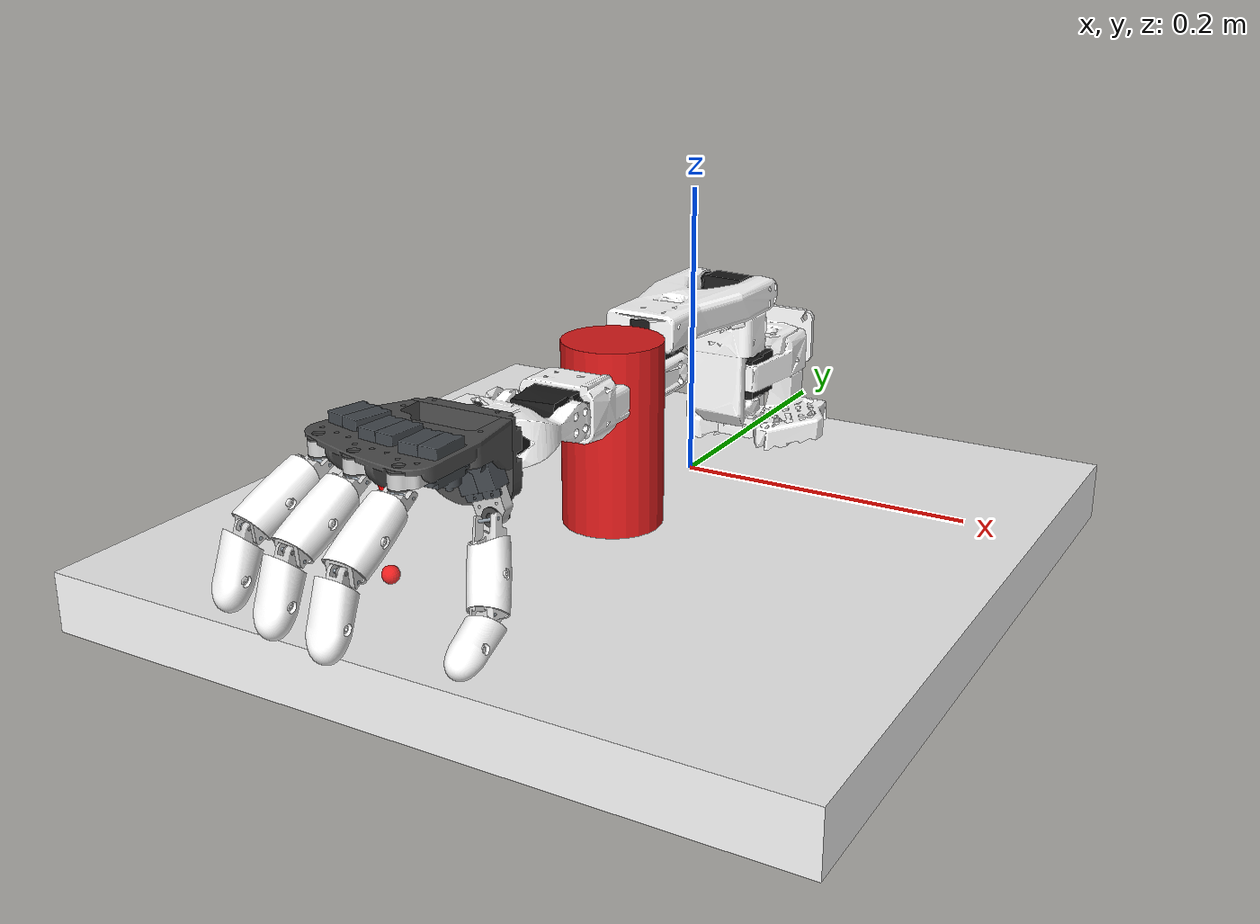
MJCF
<mujoco model="so_arm100">
  <compiler angle="radian" meshdir="../sim/"/>

  <option impratio="10" cone="elliptic"/>

  <visual>
    <global offheight="640"/>
  </visual>

  <default>
    <default class="so_arm100">
      <joint armature="0.1" frictionloss="0.1"/>
      <general forcerange="-3.5 3.5" biastype="affine" gainprm="50" biasprm="0 -50 1"/>
      <default class="Rotation">
        <joint range="-1.92 1.92" axis="0 1 0"/>
      </default>
      <default class="Pitch">
        <joint range="-3.32 0.174" axis="1 0 0"/>
      </default>
      <default class="Elbow">
        <joint range="-0.174 3.14" axis="1 0 0"/>
      </default>
      <default class="Wrist_Pitch">
        <joint range="-1.66 1.66" axis="1 0 0"/>
      </default>
      <default class="Wrist_Roll">
        <joint range="-2.79 2.79" axis="0 1 0"/>
      </default>
      <default class="Jaw">
        <joint range="-0.174 1.75"/>
      </default>
      <default class="visual">
        <geom type="mesh" contype="0" conaffinity="0" group="2" density="0" material="white"/>
        <default class="motor_visual">
          <geom material="black"/>
        </default>
      </default>
      <default class="collision">
        <geom type="mesh" group="3" material="white"/>
        <default class="finger_collision">
          <geom type="box" solref="0.01" solimp="2 1 0.01"/>
        </default>
      </default>
    </default>
    <default class="h_main"/>
  </default>

  <asset>
    <material name="white"/>
    <material name="black" rgba="0.1 0.1 0.1 1"/>
    <mesh name="Base" file="so_arm100/assets/Base.stl"/>
    <mesh name="Base_Motor" file="so_arm100/assets/Base_Motor.stl"/>
    <mesh name="Rotation_Pitch" file="so_arm100/assets/Rotation_Pitch.stl"/>
    <mesh name="Rotation_Pitch_Motor" file="so_arm100/assets/Rotation_Pitch_Motor.stl"/>
    <mesh name="Upper_Arm" file="so_arm100/assets/Upper_Arm.stl"/>
    <mesh name="Upper_Arm_Motor" file="so_arm100/assets/Upper_Arm_Motor.stl"/>
    <mesh name="Lower_Arm" file="so_arm100/assets/Lower_Arm.stl"/>
    <mesh name="Lower_Arm_Motor" file="so_arm100/assets/Lower_Arm_Motor.stl"/>
    <mesh name="Wrist_Pitch_Roll" file="so_arm100/assets/Wrist_Pitch_Roll.stl"/>
    <mesh name="Wrist_Pitch_Roll_Motor" file="so_arm100/assets/Wrist_Pitch_Roll_Motor.stl"/>
    <mesh name="Fixed_Jaw" file="so_arm100/assets/Fixed_Jaw.stl"/>
    <mesh name="Fixed_Jaw_Motor" file="so_arm100/assets/Fixed_Jaw_Motor.stl"/>
    <mesh name="Fixed_Jaw_Collision_1" file="so_arm100/assets/Fixed_Jaw_Collision_1.stl"/>
    <mesh name="Fixed_Jaw_Collision_2" file="so_arm100/assets/Fixed_Jaw_Collision_2.stl"/>
    <mesh name="Moving_Jaw" file="so_arm100/assets/Moving_Jaw.stl"/>
    <mesh name="Moving_Jaw_Collision_1" file="so_arm100/assets/Moving_Jaw_Collision_1.stl"/>
    <mesh name="Moving_Jaw_Collision_2" file="so_arm100/assets/Moving_Jaw_Collision_2.stl"/>
    <mesh name="Moving_Jaw_Collision_3" file="so_arm100/assets/Moving_Jaw_Collision_3.stl"/>
    <mesh name="h_bushing_0608_04" content_type="model/stl" file="ah_official/assets/bushing_0608_04.stl"/>
    <mesh name="h_distal" content_type="model/stl" file="ah_official/assets/distal.stl"/>
    <mesh name="h_distal_shell" content_type="model/stl" file="ah_official/assets/distal_shell.stl"/>
    <mesh name="h_finger_frame_1" content_type="model/stl" file="ah_official/assets/finger_frame_1.stl"/>
    <mesh name="h_finger_frame_2" content_type="model/stl" file="ah_official/assets/finger_frame_2.stl"/>
    <mesh name="h_parallel_pin_2_x_10__fee063fca0c8b40e46bbc4ffff61d999" content_type="model/stl" file="ah_official/assets/parallel_pin_2_x_10__fee063fca0c8b40e46bbc4ffff61d999.stl"/>
    <mesh name="h_parallel_pin_2_x_16__da4b7ddbe9d803fe3fbc70f2e822b99b" content_type="model/stl" file="ah_official/assets/parallel_pin_2_x_16__da4b7ddbe9d803fe3fbc70f2e822b99b.stl"/>
    <mesh name="h_proximal" content_type="model/stl" file="ah_official/assets/proximal.stl"/>
    <mesh name="h_proximal_shell" content_type="model/stl" file="ah_official/assets/proximal_shell.stl"/>
    <mesh name="h_r_hand_plate" content_type="model/stl" file="ah_official/assets/r_hand_plate.stl"/>
    <mesh name="h_r_wrist_interface" content_type="model/stl" file="ah_official/assets/r_wrist_interface.stl"/>
    <mesh name="h_scs0009" content_type="model/stl" file="ah_official/assets/scs0009.stl"/>
    <mesh name="h_std00447_thermoplastique_m2_5x6__configuration_default" content_type="model/stl" file="ah_official/assets/std00447_thermoplastique_m2_5x6__configuration_default.stl"/>
  </asset>

  <worldbody>
    <body name="Base" childclass="so_arm100" pos="0 0.13 0" gravcomp="1">
      <geom class="visual" mesh="Base"/>
      <geom class="motor_visual" mesh="Base_Motor"/>
      <geom class="collision" mesh="Base"/>
      <body name="Rotation_Pitch" pos="0 -0.0452 0.0165" quat="0.707105 0.707108 0 0" gravcomp="1">
        <inertial pos="-9.07886e-05 0.0590972 0.031089" quat="0.363978 0.441169 -0.623108 0.533504" mass="0.119226" diaginertia="5.94278e-05 5.89975e-05 3.13712e-05"/>
        <joint name="Rotation" class="Rotation"/>
        <geom class="visual" mesh="Rotation_Pitch"/>
        <geom class="motor_visual" mesh="Rotation_Pitch_Motor"/>
        <geom class="collision" mesh="Rotation_Pitch"/>
        <body name="Upper_Arm" pos="0 0.1025 0.0306" quat="0.707109 0.707105 0 0" gravcomp="1">
          <inertial pos="-1.72052e-05 0.0701802 0.00310545" quat="0.50104 0.498994 -0.493562 0.50632" mass="0.162409" diaginertia="0.000213312 0.000167164 7.01522e-05"/>
          <joint name="Pitch" class="Pitch"/>
          <geom class="visual" mesh="Upper_Arm"/>
          <geom class="motor_visual" mesh="Upper_Arm_Motor"/>
          <geom class="collision" mesh="Upper_Arm"/>
          <body name="Lower_Arm" pos="0 0.11257 0.028" quat="0.707109 -0.707105 0 0" gravcomp="1">
            <inertial pos="-0.00339604 0.00137796 0.0768007" quat="0.701995 0.0787996 0.0645626 0.704859" mass="0.147968" diaginertia="0.000138803 0.000107748 4.84242e-05"/>
            <joint name="Elbow" class="Elbow"/>
            <geom class="visual" mesh="Lower_Arm"/>
            <geom class="motor_visual" mesh="Lower_Arm_Motor"/>
            <geom class="collision" mesh="Lower_Arm"/>
            <body name="Wrist_Pitch_Roll" pos="0 0.0052 0.1349" quat="0.707109 -0.707105 0 0" gravcomp="1">
              <inertial pos="-0.00852653 -0.0352279 -2.34622e-05" quat="-0.0522806 0.705235 0.0549524 0.704905" mass="0.0661321" diaginertia="3.45403e-05 2.39041e-05 1.94704e-05"/>
              <joint name="Wrist_Pitch" class="Wrist_Pitch"/>
              <geom class="visual" mesh="Wrist_Pitch_Roll"/>
              <geom class="motor_visual" mesh="Wrist_Pitch_Roll_Motor"/>
              <geom class="collision" mesh="Wrist_Pitch_Roll"/>
              <body name="Fixed_Jaw" pos="0 -0.0601 0" quat="0.707109 0 0.707105 0" gravcomp="1">
                <inertial pos="0.00552377 -0.0280167 0.000483583" quat="0.41836 0.620891 -0.350644 0.562599" mass="0.0929859" diaginertia="5.03136e-05 4.64098e-05 2.72961e-05"/>
                <joint name="Wrist_Roll" class="Wrist_Roll"/>
                <site name="jaw_tool" size="0.004" pos="-0.005 -0.085 0" rgba="1 0 0 1"/>
                <body name="h_palm" pos="0 -0.0025 0" quat="0.707105 0.707108 0 0" gravcomp="1">
                  <geom pos="-0.022075 0.03055 0.0698" quat="0.707107 0 0 0.707107" type="mesh" contype="0" conaffinity="0" group="2" rgba="0.262745 0.282353 0.301961 1" density="0" mesh="h_scs0009"/>
                  <geom pos="-0.022075 0.03055 0.0698" quat="0.707107 0 0 0.707107" type="mesh" contype="2" conaffinity="0" group="3" friction="1.5 0.02 0.001" rgba="0 0 0 0" density="1100" mesh="h_scs0009"/>
                  <geom pos="-0.0115 0.0245 0.1022" quat="0.5 0.5 -0.5 -0.5" type="mesh" contype="0" conaffinity="0" group="2" rgba="0.8 0.8 0.8 1" density="0" mesh="h_finger_frame_1"/>
                  <geom pos="-0.0115 0.0245 0.1022" quat="0.5 0.5 -0.5 -0.5" type="mesh" contype="2" conaffinity="0" group="3" friction="1.5 0.02 0.001" rgba="0 0 0 0" density="1100" mesh="h_finger_frame_1"/>
                  <geom pos="-0.0115 0.0245 0.1022" quat="0.5 0.5 -0.5 -0.5" type="mesh" contype="0" conaffinity="0" group="2" rgba="0.301961 0.301961 0.301961 1" density="0" mesh="h_r_hand_plate"/>
                  <geom pos="-0.0115 0.0245 0.1022" quat="0.5 0.5 -0.5 -0.5" type="mesh" contype="2" conaffinity="0" group="3" friction="1.5 0.02 0.001" rgba="0 0 0 0" density="1100" mesh="h_r_hand_plate"/>
                  <geom pos="-0.00443741 0.0191037 0.019125" quat="0.579228 -0.579228 0.40558 -0.40558" type="mesh" contype="0" conaffinity="0" group="2" rgba="0.262745 0.282353 0.301961 1" density="0" mesh="h_scs0009"/>
                  <geom pos="-0.00443741 0.0191037 0.019125" quat="0.579228 -0.579228 0.40558 -0.40558" type="mesh" contype="2" conaffinity="0" group="3" friction="1.5 0.02 0.001" rgba="0 0 0 0" density="1100" mesh="h_scs0009"/>
                  <geom pos="-0.0115 -0.0083 0.0961543" quat="0.473147 0.525483 -0.473147 -0.525483" type="mesh" contype="0" conaffinity="0" group="2" rgba="0.8 0.8 0.8 1" density="0" mesh="h_finger_frame_2"/>
                  <geom pos="-0.0115 -0.0083 0.0961543" quat="0.473147 0.525483 -0.473147 -0.525483" type="mesh" contype="2" conaffinity="0" group="3" friction="1.5 0.02 0.001" rgba="0 0 0 0" density="1100" mesh="h_finger_frame_2"/>
                  <geom pos="-0.0115 -0.0405 0.0851417" quat="0.437766 0.555303 -0.437766 -0.555303" type="mesh" contype="0" conaffinity="0" group="2" rgba="0.8 0.8 0.8 1" density="0" mesh="h_finger_frame_2"/>
                  <geom pos="-0.0115 -0.0405 0.0851417" quat="0.437766 0.555303 -0.437766 -0.555303" type="mesh" contype="2" conaffinity="0" group="3" friction="1.5 0.02 0.001" rgba="0 0 0 0" density="1100" mesh="h_finger_frame_2"/>
                  <geom pos="-0.015 -0.0083 0.0961543" quat="0.525483 -0.473147 0.525483 -0.473147" type="mesh" contype="0" conaffinity="0" group="2" rgba="0.301961 0.301961 0.301961 1" density="0" mesh="h_bushing_0608_04"/>
                  <geom pos="-0.015 -0.0083 0.0961543" quat="0.525483 -0.473147 0.525483 -0.473147" type="mesh" contype="2" conaffinity="0" group="3" friction="1.5 0.02 0.001" rgba="0 0 0 0" density="1100" mesh="h_bushing_0608_04"/>
                  <geom pos="-0.015 0.0245 0.1022" quat="0.5 -0.5 0.5 -0.5" type="mesh" contype="0" conaffinity="0" group="2" rgba="0.301961 0.301961 0.301961 1" density="0" mesh="h_bushing_0608_04"/>
                  <geom pos="-0.015 0.0245 0.1022" quat="0.5 -0.5 0.5 -0.5" type="mesh" contype="2" conaffinity="0" group="3" friction="1.5 0.02 0.001" rgba="0 0 0 0" density="1100" mesh="h_bushing_0608_04"/>
                  <geom pos="-0.015 -0.0405 0.0851417" quat="0.555303 -0.437766 0.555303 -0.437766" type="mesh" contype="0" conaffinity="0" group="2" rgba="0.301961 0.301961 0.301961 1" density="0" mesh="h_bushing_0608_04"/>
                  <geom pos="-0.015 -0.0405 0.0851417" quat="0.555303 -0.437766 0.555303 -0.437766" type="mesh" contype="2" conaffinity="0" group="3" friction="1.5 0.02 0.001" rgba="0 0 0 0" density="1100" mesh="h_bushing_0608_04"/>
                  <geom pos="-0.025 -0.0083 0.0961543" quat="0.473147 0.525483 -0.473147 -0.525483" type="mesh" contype="0" conaffinity="0" group="2" rgba="0.301961 0.301961 0.301961 1" density="0" mesh="h_bushing_0608_04"/>
                  <geom pos="-0.025 -0.0083 0.0961543" quat="0.473147 0.525483 -0.473147 -0.525483" type="mesh" contype="2" conaffinity="0" group="3" friction="1.5 0.02 0.001" rgba="0 0 0 0" density="1100" mesh="h_bushing_0608_04"/>
                  <geom pos="0.0280778 0.0245 0.0297" quat="0 0.573576 0.819152 0" type="mesh" contype="0" conaffinity="0" group="2" rgba="0.8 0.8 0.8 1" density="0" mesh="h_finger_frame_2"/>
                  <geom pos="0.0280778 0.0245 0.0297" quat="0 0.573576 0.819152 0" type="mesh" contype="2" conaffinity="0" group="3" friction="1.5 0.02 0.001" rgba="0 0 0 0" density="1100" mesh="h_finger_frame_2"/>
                  <geom pos="-0.022075 -0.0109301 0.0632994" quat="0.706138 0.0370071 -0.0370071 0.706138" type="mesh" contype="0" conaffinity="0" group="2" rgba="0.262745 0.282353 0.301961 1" density="0" mesh="h_scs0009"/>
                  <geom pos="-0.022075 -0.0109301 0.0632994" quat="0.706138 0.0370071 -0.0370071 0.706138" type="mesh" contype="2" conaffinity="0" group="3" friction="1.5 0.02 0.001" rgba="0 0 0 0" density="1100" mesh="h_scs0009"/>
                  <geom pos="-0.022075 0.01845 0.0698" quat="0.707107 0 0 0.707107" type="mesh" contype="0" conaffinity="0" group="2" rgba="0.262745 0.282353 0.301961 1" density="0" mesh="h_scs0009"/>
                  <geom pos="-0.022075 0.01845 0.0698" quat="0.707107 0 0 0.707107" type="mesh" contype="2" conaffinity="0" group="3" friction="1.5 0.02 0.001" rgba="0 0 0 0" density="1100" mesh="h_scs0009"/>
                  <geom pos="-0.0109 0.0245 0.1022" quat="0.5 0.5 -0.5 -0.5" type="mesh" contype="0" conaffinity="0" group="2" rgba="0.8 0.8 0.8 1" density="0" mesh="h_finger_frame_2"/>
                  <geom pos="-0.0109 0.0245 0.1022" quat="0.5 0.5 -0.5 -0.5" type="mesh" contype="2" conaffinity="0" group="3" friction="1.5 0.02 0.001" rgba="0 0 0 0" density="1100" mesh="h_finger_frame_2"/>
                  <geom pos="-0.022075 0.00110358 0.0645642" quat="0.706138 0.0370071 -0.0370071 0.706138" type="mesh" contype="0" conaffinity="0" group="2" rgba="0.262745 0.282353 0.301961 1" density="0" mesh="h_scs0009"/>
                  <geom pos="-0.022075 0.00110358 0.0645642" quat="0.706138 0.0370071 -0.0370071 0.706138" type="mesh" contype="2" conaffinity="0" group="3" friction="1.5 0.02 0.001" rgba="0 0 0 0" density="1100" mesh="h_scs0009"/>
                  <geom pos="-0.022075 -0.0388192 0.0522246" quat="0.702205 0.0831116 -0.0831116 0.702205" type="mesh" contype="0" conaffinity="0" group="2" rgba="0.262745 0.282353 0.301961 1" density="0" mesh="h_scs0009"/>
                  <geom pos="-0.022075 -0.0388192 0.0522246" quat="0.702205 0.0831116 -0.0831116 0.702205" type="mesh" contype="2" conaffinity="0" group="3" friction="1.5 0.02 0.001" rgba="0 0 0 0" density="1100" mesh="h_scs0009"/>
                  <geom pos="-0.0115 -0.0083 0.0961543" quat="0.473147 0.525483 -0.473147 -0.525483" type="mesh" contype="0" conaffinity="0" group="2" rgba="0.8 0.8 0.8 1" density="0" mesh="h_finger_frame_1"/>
                  <geom pos="-0.0115 -0.0083 0.0961543" quat="0.473147 0.525483 -0.473147 -0.525483" type="mesh" contype="2" conaffinity="0" group="3" friction="1.5 0.02 0.001" rgba="0 0 0 0" density="1100" mesh="h_finger_frame_1"/>
                  <geom pos="0.0280778 0.0245 0.0262" quat="0.573576 0 0 0.819152" type="mesh" contype="0" conaffinity="0" group="2" rgba="0.301961 0.301961 0.301961 1" density="0" mesh="h_bushing_0608_04"/>
                  <geom pos="0.0280778 0.0245 0.0262" quat="0.573576 0 0 0.819152" type="mesh" contype="2" conaffinity="0" group="3" friction="1.5 0.02 0.001" rgba="0 0 0 0" density="1100" mesh="h_bushing_0608_04"/>
                  <geom pos="-0.022075 -0.0270535 0.0550493" quat="0.702205 0.0831116 -0.0831116 0.702205" type="mesh" contype="0" conaffinity="0" group="2" rgba="0.262745 0.282353 0.301961 1" density="0" mesh="h_scs0009"/>
                  <geom pos="-0.022075 -0.0270535 0.0550493" quat="0.702205 0.0831116 -0.0831116 0.702205" type="mesh" contype="2" conaffinity="0" group="3" friction="1.5 0.02 0.001" rgba="0 0 0 0" density="1100" mesh="h_scs0009"/>
                  <geom pos="-0.0115 0.0245 0.1022" quat="0.5 0.5 -0.5 -0.5" type="mesh" contype="0" conaffinity="0" group="2" rgba="0.301961 0.301961 0.301961 1" density="0" mesh="h_r_wrist_interface"/>
                  <geom pos="-0.0115 0.0245 0.1022" quat="0.5 0.5 -0.5 -0.5" type="mesh" contype="2" conaffinity="0" group="3" friction="1.5 0.02 0.001" rgba="0 0 0 0" density="1100" mesh="h_r_wrist_interface"/>
                  <geom pos="-0.000298971 0.00773341 0.019125" quat="0.579228 -0.579228 0.40558 -0.40558" type="mesh" contype="0" conaffinity="0" group="2" rgba="0.262745 0.282353 0.301961 1" density="0" mesh="h_scs0009"/>
                  <geom pos="-0.000298971 0.00773341 0.019125" quat="0.579228 -0.579228 0.40558 -0.40558" type="mesh" contype="2" conaffinity="0" group="3" friction="1.5 0.02 0.001" rgba="0 0 0 0" density="1100" mesh="h_scs0009"/>
                  <geom pos="-0.025 0.0245 0.1022" quat="0.5 0.5 -0.5 -0.5" type="mesh" contype="0" conaffinity="0" group="2" rgba="0.301961 0.301961 0.301961 1" density="0" mesh="h_bushing_0608_04"/>
                  <geom pos="-0.025 0.0245 0.1022" quat="0.5 0.5 -0.5 -0.5" type="mesh" contype="2" conaffinity="0" group="3" friction="1.5 0.02 0.001" rgba="0 0 0 0" density="1100" mesh="h_bushing_0608_04"/>
                  <geom pos="-0.025 -0.0405 0.0851417" quat="0.437766 0.555303 -0.437766 -0.555303" type="mesh" contype="0" conaffinity="0" group="2" rgba="0.301961 0.301961 0.301961 1" density="0" mesh="h_bushing_0608_04"/>
                  <geom pos="-0.025 -0.0405 0.0851417" quat="0.437766 0.555303 -0.437766 -0.555303" type="mesh" contype="2" conaffinity="0" group="3" friction="1.5 0.02 0.001" rgba="0 0 0 0" density="1100" mesh="h_bushing_0608_04"/>
                  <geom pos="0.0280778 0.0245 0.0162" quat="0 0.573576 0.819152 0" type="mesh" contype="0" conaffinity="0" group="2" rgba="0.301961 0.301961 0.301961 1" density="0" mesh="h_bushing_0608_04"/>
                  <geom pos="0.0280778 0.0245 0.0162" quat="0 0.573576 0.819152 0" type="mesh" contype="2" conaffinity="0" group="3" friction="1.5 0.02 0.001" rgba="0 0 0 0" density="1100" mesh="h_bushing_0608_04"/>
                  <geom pos="-0.0115 -0.0405 0.0851417" quat="0.437766 0.555303 -0.437766 -0.555303" type="mesh" contype="0" conaffinity="0" group="2" rgba="0.8 0.8 0.8 1" density="0" mesh="h_finger_frame_1"/>
                  <geom pos="-0.0115 -0.0405 0.0851417" quat="0.437766 0.555303 -0.437766 -0.555303" type="mesh" contype="2" conaffinity="0" group="3" friction="1.5 0.02 0.001" rgba="0 0 0 0" density="1100" mesh="h_finger_frame_1"/>
                  <geom pos="0.0280778 0.0245 0.0297" quat="0 0.573576 0.819152 0" type="mesh" contype="0" conaffinity="0" group="2" rgba="0.8 0.8 0.8 1" density="0" mesh="h_finger_frame_1"/>
                  <geom pos="0.0280778 0.0245 0.0297" quat="0 0.573576 0.819152 0" type="mesh" contype="2" conaffinity="0" group="3" friction="1.5 0.02 0.001" rgba="0 0 0 0" density="1100" mesh="h_finger_frame_1"/>
                  <site name="h_tool" pos="0.0447776 -0.000303674 0.082252" rgba="1 0 0 0.8"/>
                  <body name="h_f0_prox" pos="0.0154498 0.0196758 0.146691" quat="0.614871 -0.617306 -0.347721 -0.346349" gravcomp="1">
                    <joint name="h_f0_j1" range="-0.83 1.05" armature="0.002" damping="0.05" pos="-0.0521581 -0.000118494 -0.019318" axis="0.00649933 0.00487255 0.999967"/>
                    <geom pos="-0.022 -0.004 -0.00655" quat="0.707107 0 0 -0.707107" type="mesh" contype="0" conaffinity="0" group="2" rgba="0.901961 0.901961 0.901961 1" density="0" mesh="h_std00447_thermoplastique_m2_5x6__configuration_default"/>
                    <geom pos="-0.022 -0.004 -0.00655" quat="0.707107 0 0 -0.707107" type="mesh" contype="2" conaffinity="0" group="3" friction="1.5 0.02 0.001" rgba="0 0 0 0" density="1100" mesh="h_std00447_thermoplastique_m2_5x6__configuration_default"/>
                    <geom pos="-0.022 -0.004 0.01685" quat="0 -0.707107 0.707107 0" type="mesh" contype="0" conaffinity="0" group="2" rgba="0.901961 0.901961 0.901961 1" density="0" mesh="h_std00447_thermoplastique_m2_5x6__configuration_default"/>
                    <geom pos="-0.022 -0.004 0.01685" quat="0 -0.707107 0.707107 0" type="mesh" contype="2" conaffinity="0" group="3" friction="1.5 0.02 0.001" rgba="0 0 0 0" density="1100" mesh="h_std00447_thermoplastique_m2_5x6__configuration_default"/>
                    <geom pos="-0.052 0 0.00515" quat="0.707107 0 0 -0.707107" type="mesh" contype="0" conaffinity="0" group="2" rgba="0.603922 0.647059 0.686275 1" density="0" mesh="h_parallel_pin_2_x_16__da4b7ddbe9d803fe3fbc70f2e822b99b"/>
                    <geom pos="-0.052 0 0.00515" quat="0.707107 0 0 -0.707107" type="mesh" contype="2" conaffinity="0" group="3" friction="1.5 0.02 0.001" rgba="0 0 0 0" density="1100" mesh="h_parallel_pin_2_x_16__da4b7ddbe9d803fe3fbc70f2e822b99b"/>
                    <geom pos="0 0 0.00515" quat="0.707107 0 0 -0.707107" type="mesh" contype="0" conaffinity="0" group="2" rgba="0.603922 0.647059 0.686275 1" density="0" mesh="h_parallel_pin_2_x_16__da4b7ddbe9d803fe3fbc70f2e822b99b"/>
                    <geom pos="0 0 0.00515" quat="0.707107 0 0 -0.707107" type="mesh" contype="2" conaffinity="0" group="3" friction="1.5 0.02 0.001" rgba="0 0 0 0" density="1100" mesh="h_parallel_pin_2_x_16__da4b7ddbe9d803fe3fbc70f2e822b99b"/>
                    <geom pos="-0.052 0 0.00515" quat="0.5 0.5 0.5 -0.5" type="mesh" contype="0" conaffinity="0" group="2" rgba="1 1 1 1" density="0" mesh="h_proximal_shell"/>
                    <geom pos="-0.052 0 0.00515" quat="0.5 0.5 0.5 -0.5" type="mesh" contype="2" conaffinity="0" group="3" friction="1.5 0.02 0.001" rgba="0 0 0 0" density="1100" mesh="h_proximal_shell"/>
                    <geom pos="-0.052 0 0.00525" quat="0.5 0.5 0.5 -0.5" type="mesh" contype="0" conaffinity="0" group="2" rgba="0.8 0.8 0.8 1" density="0" mesh="h_proximal"/>
                    <geom pos="-0.052 0 0.00525" quat="0.5 0.5 0.5 -0.5" type="mesh" contype="2" conaffinity="0" group="3" friction="1.5 0.02 0.001" rgba="0 0 0 0" density="1100" mesh="h_proximal"/>
                    <body name="h_f0_dist" pos="0.000370128 -0.00598857 0.00655" quat="0 0.999998 0.00198369 0" gravcomp="1">
                      <joint name="h_f0_j2" range="-0.747 0.945" armature="0.001" damping="0.03" pos="-0.000346366 -0.00598999 0.00655" axis="0 0 -1"/>
                      <geom pos="0.0194851 -0.0165558 -0.00735" quat="0.870159 0 0 0.49277" type="mesh" contype="0" conaffinity="0" group="2" rgba="0.901961 0.901961 0.901961 1" density="0" mesh="h_std00447_thermoplastique_m2_5x6__configuration_default"/>
                      <geom pos="0.0194851 -0.0165558 -0.00735" quat="0.870159 0 0 0.49277" type="mesh" contype="2" conaffinity="0" group="3" friction="1.5 0.02 0.001" rgba="0 0 0 0" density="1100" mesh="h_std00447_thermoplastique_m2_5x6__configuration_default"/>
                      <geom pos="0.0194851 -0.0165558 0.01185" quat="0 -0.870159 -0.49277 0" type="mesh" contype="0" conaffinity="0" group="2" rgba="0.901961 0.901961 0.901961 1" density="0" mesh="h_std00447_thermoplastique_m2_5x6__configuration_default"/>
                      <geom pos="0.0194851 -0.0165558 0.01185" quat="0 -0.870159 -0.49277 0" type="mesh" contype="2" conaffinity="0" group="3" friction="1.5 0.02 0.001" rgba="0 0 0 0" density="1100" mesh="h_std00447_thermoplastique_m2_5x6__configuration_default"/>
                      <geom pos="-0.0449404 0.0207565 0.00225" quat="0.348441 -0.615296 -0.348441 -0.615296" type="mesh" contype="0" conaffinity="0" group="2" rgba="0.8 0.8 0.8 1" density="0" mesh="h_distal"/>
                      <geom pos="-0.0449404 0.0207565 0.00225" quat="0.348441 -0.615296 -0.348441 -0.615296" type="mesh" contype="2" conaffinity="0" group="3" friction="1.5 0.02 0.001" rgba="0 0 0 0" density="1100" mesh="h_distal"/>
                      <geom pos="-0.0449404 0.0207565 0.00225" quat="0.348441 -0.615296 -0.348441 -0.615296" type="mesh" contype="0" conaffinity="0" group="2" rgba="1 1 1 1" density="0" mesh="h_distal_shell"/>
                      <geom pos="-0.0449404 0.0207565 0.00225" quat="0.348441 -0.615296 -0.348441 -0.615296" type="mesh" contype="2" conaffinity="0" group="3" friction="1.5 0.02 0.001" rgba="0 0 0 0" density="1100" mesh="h_distal_shell"/>
                      <geom pos="0 0 0.00225" quat="0 -0.49277 0.870159 0" type="mesh" contype="0" conaffinity="0" group="2" rgba="0.603922 0.647059 0.686275 1" density="0" mesh="h_parallel_pin_2_x_10__fee063fca0c8b40e46bbc4ffff61d999"/>
                      <geom pos="0 0 0.00225" quat="0 -0.49277 0.870159 0" type="mesh" contype="2" conaffinity="0" group="3" friction="1.5 0.02 0.001" rgba="0 0 0 0" density="1100" mesh="h_parallel_pin_2_x_10__fee063fca0c8b40e46bbc4ffff61d999"/>
                      <site name="h_f0_tip" size="0.003"/>
                    </body>
                  </body>
                  <body name="h_f1_prox" pos="0.0154497 -0.0177483 0.139897" quat="0.646335 -0.58428 -0.329119 -0.364074" gravcomp="1">
                    <joint name="h_f1_j1" range="-0.83 1.05" armature="0.002" damping="0.05" pos="-0.0520105 -7.89961e-06 0.00337914" axis="0.00650069 0.00487357 0.999967"/>
                    <geom pos="0 0 0.00515" quat="0.707107 0 0 -0.707107" type="mesh" contype="0" conaffinity="0" group="2" rgba="0.603922 0.647059 0.686275 1" density="0" mesh="h_parallel_pin_2_x_16__da4b7ddbe9d803fe3fbc70f2e822b99b"/>
                    <geom pos="0 0 0.00515" quat="0.707107 0 0 -0.707107" type="mesh" contype="2" conaffinity="0" group="3" friction="1.5 0.02 0.001" rgba="0 0 0 0" density="1100" mesh="h_parallel_pin_2_x_16__da4b7ddbe9d803fe3fbc70f2e822b99b"/>
                    <geom pos="-0.022 -0.004 0.01685" quat="0 0.707107 -0.707107 0" type="mesh" contype="0" conaffinity="0" group="2" rgba="0.901961 0.901961 0.901961 1" density="0" mesh="h_std00447_thermoplastique_m2_5x6__configuration_default"/>
                    <geom pos="-0.022 -0.004 0.01685" quat="0 0.707107 -0.707107 0" type="mesh" contype="2" conaffinity="0" group="3" friction="1.5 0.02 0.001" rgba="0 0 0 0" density="1100" mesh="h_std00447_thermoplastique_m2_5x6__configuration_default"/>
                    <geom pos="-0.022 -0.004 -0.00655" quat="0.707107 0 0 -0.707107" type="mesh" contype="0" conaffinity="0" group="2" rgba="0.901961 0.901961 0.901961 1" density="0" mesh="h_std00447_thermoplastique_m2_5x6__configuration_default"/>
                    <geom pos="-0.022 -0.004 -0.00655" quat="0.707107 0 0 -0.707107" type="mesh" contype="2" conaffinity="0" group="3" friction="1.5 0.02 0.001" rgba="0 0 0 0" density="1100" mesh="h_std00447_thermoplastique_m2_5x6__configuration_default"/>
                    <geom pos="-0.052 0 0.00525" quat="0.5 0.5 0.5 -0.5" type="mesh" contype="0" conaffinity="0" group="2" rgba="0.8 0.8 0.8 1" density="0" mesh="h_proximal"/>
                    <geom pos="-0.052 0 0.00525" quat="0.5 0.5 0.5 -0.5" type="mesh" contype="2" conaffinity="0" group="3" friction="1.5 0.02 0.001" rgba="0 0 0 0" density="1100" mesh="h_proximal"/>
                    <geom pos="-0.052 0 0.00515" quat="0.5 0.5 0.5 -0.5" type="mesh" contype="0" conaffinity="0" group="2" rgba="1 1 1 1" density="0" mesh="h_proximal_shell"/>
                    <geom pos="-0.052 0 0.00515" quat="0.5 0.5 0.5 -0.5" type="mesh" contype="2" conaffinity="0" group="3" friction="1.5 0.02 0.001" rgba="0 0 0 0" density="1100" mesh="h_proximal_shell"/>
                    <geom pos="-0.052 0 0.00515" quat="0.707107 0 0 -0.707107" type="mesh" contype="0" conaffinity="0" group="2" rgba="0.603922 0.647059 0.686275 1" density="0" mesh="h_parallel_pin_2_x_16__da4b7ddbe9d803fe3fbc70f2e822b99b"/>
                    <geom pos="-0.052 0 0.00515" quat="0.707107 0 0 -0.707107" type="mesh" contype="2" conaffinity="0" group="3" friction="1.5 0.02 0.001" rgba="0 0 0 0" density="1100" mesh="h_parallel_pin_2_x_16__da4b7ddbe9d803fe3fbc70f2e822b99b"/>
                    <body name="h_f1_dist" pos="0.000370109 -0.00598857 0.00655" quat="0 0.999998 0.00198215 0" gravcomp="1">
                      <joint name="h_f1_j2" range="-0.747 0.945" armature="0.001" damping="0.03" pos="-0.000346366 -0.00598999 0.00655" axis="0 0 -1"/>
                      <geom pos="-0.0449404 0.0207565 0.00225" quat="0.348441 -0.615296 -0.348441 -0.615296" type="mesh" contype="0" conaffinity="0" group="2" rgba="0.8 0.8 0.8 1" density="0" mesh="h_distal"/>
                      <geom pos="-0.0449404 0.0207565 0.00225" quat="0.348441 -0.615296 -0.348441 -0.615296" type="mesh" contype="2" conaffinity="0" group="3" friction="1.5 0.02 0.001" rgba="0 0 0 0" density="1100" mesh="h_distal"/>
                      <geom pos="0.0194851 -0.0165558 0.01185" quat="0 -0.870159 -0.49277 0" type="mesh" contype="0" conaffinity="0" group="2" rgba="0.901961 0.901961 0.901961 1" density="0" mesh="h_std00447_thermoplastique_m2_5x6__configuration_default"/>
                      <geom pos="0.0194851 -0.0165558 0.01185" quat="0 -0.870159 -0.49277 0" type="mesh" contype="2" conaffinity="0" group="3" friction="1.5 0.02 0.001" rgba="0 0 0 0" density="1100" mesh="h_std00447_thermoplastique_m2_5x6__configuration_default"/>
                      <geom pos="-0.0449404 0.0207565 0.00225" quat="0.348441 -0.615296 -0.348441 -0.615296" type="mesh" contype="0" conaffinity="0" group="2" rgba="1 1 1 1" density="0" mesh="h_distal_shell"/>
                      <geom pos="-0.0449404 0.0207565 0.00225" quat="0.348441 -0.615296 -0.348441 -0.615296" type="mesh" contype="2" conaffinity="0" group="3" friction="1.5 0.02 0.001" rgba="0 0 0 0" density="1100" mesh="h_distal_shell"/>
                      <geom pos="0.0194851 -0.0165558 -0.00735" quat="0.870159 0 0 0.49277" type="mesh" contype="0" conaffinity="0" group="2" rgba="0.901961 0.901961 0.901961 1" density="0" mesh="h_std00447_thermoplastique_m2_5x6__configuration_default"/>
                      <geom pos="0.0194851 -0.0165558 -0.00735" quat="0.870159 0 0 0.49277" type="mesh" contype="2" conaffinity="0" group="3" friction="1.5 0.02 0.001" rgba="0 0 0 0" density="1100" mesh="h_std00447_thermoplastique_m2_5x6__configuration_default"/>
                      <geom pos="0 0 0.00225" quat="0 0.49277 -0.870159 0" type="mesh" contype="0" conaffinity="0" group="2" rgba="0.603922 0.647059 0.686275 1" density="0" mesh="h_parallel_pin_2_x_10__fee063fca0c8b40e46bbc4ffff61d999"/>
                      <geom pos="0 0 0.00225" quat="0 0.49277 -0.870159 0" type="mesh" contype="2" conaffinity="0" group="3" friction="1.5 0.02 0.001" rgba="0 0 0 0" density="1100" mesh="h_parallel_pin_2_x_10__fee063fca0c8b40e46bbc4ffff61d999"/>
                      <site name="h_f1_tip" size="0.003"/>
                    </body>
                  </body>
                  <body name="h_f2_prox" pos="0.0154496 -0.0555771 0.127277" quat="0.683164 -0.540756 -0.304603 -0.38482" gravcomp="1">
                    <joint name="h_f2_j1" range="-0.83 1.05" armature="0.002" damping="0.05" pos="-0.0518721 9.59021e-05 0.0246754" axis="0.00650129 0.00487406 0.999967"/>
                    <geom pos="-0.052 0 0.00515" quat="0.5 0.5 0.5 -0.5" type="mesh" contype="0" conaffinity="0" group="2" rgba="1 1 1 1" density="0" mesh="h_proximal_shell"/>
                    <geom pos="-0.052 0 0.00515" quat="0.5 0.5 0.5 -0.5" type="mesh" contype="2" conaffinity="0" group="3" friction="1.5 0.02 0.001" rgba="0 0 0 0" density="1100" mesh="h_proximal_shell"/>
                    <geom pos="-0.022 -0.004 -0.00655" quat="0.707107 0 0 -0.707107" type="mesh" contype="0" conaffinity="0" group="2" rgba="0.901961 0.901961 0.901961 1" density="0" mesh="h_std00447_thermoplastique_m2_5x6__configuration_default"/>
                    <geom pos="-0.022 -0.004 -0.00655" quat="0.707107 0 0 -0.707107" type="mesh" contype="2" conaffinity="0" group="3" friction="1.5 0.02 0.001" rgba="0 0 0 0" density="1100" mesh="h_std00447_thermoplastique_m2_5x6__configuration_default"/>
                    <geom pos="-0.052 0 0.00525" quat="0.5 0.5 0.5 -0.5" type="mesh" contype="0" conaffinity="0" group="2" rgba="0.8 0.8 0.8 1" density="0" mesh="h_proximal"/>
                    <geom pos="-0.052 0 0.00525" quat="0.5 0.5 0.5 -0.5" type="mesh" contype="2" conaffinity="0" group="3" friction="1.5 0.02 0.001" rgba="0 0 0 0" density="1100" mesh="h_proximal"/>
                    <geom pos="-0.052 0 0.00515" quat="0.707107 0 0 -0.707107" type="mesh" contype="0" conaffinity="0" group="2" rgba="0.603922 0.647059 0.686275 1" density="0" mesh="h_parallel_pin_2_x_16__da4b7ddbe9d803fe3fbc70f2e822b99b"/>
                    <geom pos="-0.052 0 0.00515" quat="0.707107 0 0 -0.707107" type="mesh" contype="2" conaffinity="0" group="3" friction="1.5 0.02 0.001" rgba="0 0 0 0" density="1100" mesh="h_parallel_pin_2_x_16__da4b7ddbe9d803fe3fbc70f2e822b99b"/>
                    <geom pos="-0.022 -0.004 0.01685" quat="0 -0.707107 0.707107 0" type="mesh" contype="0" conaffinity="0" group="2" rgba="0.901961 0.901961 0.901961 1" density="0" mesh="h_std00447_thermoplastique_m2_5x6__configuration_default"/>
                    <geom pos="-0.022 -0.004 0.01685" quat="0 -0.707107 0.707107 0" type="mesh" contype="2" conaffinity="0" group="3" friction="1.5 0.02 0.001" rgba="0 0 0 0" density="1100" mesh="h_std00447_thermoplastique_m2_5x6__configuration_default"/>
                    <geom pos="0 0 0.00515" quat="0.707107 0 0 -0.707107" type="mesh" contype="0" conaffinity="0" group="2" rgba="0.603922 0.647059 0.686275 1" density="0" mesh="h_parallel_pin_2_x_16__da4b7ddbe9d803fe3fbc70f2e822b99b"/>
                    <geom pos="0 0 0.00515" quat="0.707107 0 0 -0.707107" type="mesh" contype="2" conaffinity="0" group="3" friction="1.5 0.02 0.001" rgba="0 0 0 0" density="1100" mesh="h_parallel_pin_2_x_16__da4b7ddbe9d803fe3fbc70f2e822b99b"/>
                    <body name="h_f2_dist" pos="0.000370106 -0.00598857 0.00655" quat="0 0.999998 0.00198184 0" gravcomp="1">
                      <joint name="h_f2_j2" range="-0.747 0.945" armature="0.001" damping="0.03" pos="-0.000346366 -0.00598999 0.00655" axis="0 0 -1"/>
                      <geom pos="0.0194851 -0.0165558 -0.00735" quat="0.870159 0 0 0.49277" type="mesh" contype="0" conaffinity="0" group="2" rgba="0.901961 0.901961 0.901961 1" density="0" mesh="h_std00447_thermoplastique_m2_5x6__configuration_default"/>
                      <geom pos="0.0194851 -0.0165558 -0.00735" quat="0.870159 0 0 0.49277" type="mesh" contype="2" conaffinity="0" group="3" friction="1.5 0.02 0.001" rgba="0 0 0 0" density="1100" mesh="h_std00447_thermoplastique_m2_5x6__configuration_default"/>
                      <geom pos="0.0194851 -0.0165558 0.01185" quat="0 -0.870159 -0.49277 0" type="mesh" contype="0" conaffinity="0" group="2" rgba="0.901961 0.901961 0.901961 1" density="0" mesh="h_std00447_thermoplastique_m2_5x6__configuration_default"/>
                      <geom pos="0.0194851 -0.0165558 0.01185" quat="0 -0.870159 -0.49277 0" type="mesh" contype="2" conaffinity="0" group="3" friction="1.5 0.02 0.001" rgba="0 0 0 0" density="1100" mesh="h_std00447_thermoplastique_m2_5x6__configuration_default"/>
                      <geom pos="0 0 0.00225" quat="0 -0.49277 0.870159 0" type="mesh" contype="0" conaffinity="0" group="2" rgba="0.603922 0.647059 0.686275 1" density="0" mesh="h_parallel_pin_2_x_10__fee063fca0c8b40e46bbc4ffff61d999"/>
                      <geom pos="0 0 0.00225" quat="0 -0.49277 0.870159 0" type="mesh" contype="2" conaffinity="0" group="3" friction="1.5 0.02 0.001" rgba="0 0 0 0" density="1100" mesh="h_parallel_pin_2_x_10__fee063fca0c8b40e46bbc4ffff61d999"/>
                      <geom pos="-0.0449404 0.0207565 0.00225" quat="0.348441 -0.615296 -0.348441 -0.615296" type="mesh" contype="0" conaffinity="0" group="2" rgba="0.8 0.8 0.8 1" density="0" mesh="h_distal"/>
                      <geom pos="-0.0449404 0.0207565 0.00225" quat="0.348441 -0.615296 -0.348441 -0.615296" type="mesh" contype="2" conaffinity="0" group="3" friction="1.5 0.02 0.001" rgba="0 0 0 0" density="1100" mesh="h_distal"/>
                      <geom pos="-0.0449404 0.0207565 0.00225" quat="0.348441 -0.615296 -0.348441 -0.615296" type="mesh" contype="0" conaffinity="0" group="2" rgba="1 1 1 1" density="0" mesh="h_distal_shell"/>
                      <geom pos="-0.0449404 0.0207565 0.00225" quat="0.348441 -0.615296 -0.348441 -0.615296" type="mesh" contype="2" conaffinity="0" group="3" friction="1.5 0.02 0.001" rgba="0 0 0 0" density="1100" mesh="h_distal_shell"/>
                      <site name="h_f2_tip" size="0.003"/>
                    </body>
                  </body>
                  <body name="h_f3_prox" pos="0.0682358 0.0442502 0.0566493" quat="0.638254 0.703585 -0.070486 0.304356" gravcomp="1">
                    <joint name="h_f3_j1" range="-0.83 1.05" armature="0.002" damping="0.05" pos="-0.051914 6.44437e-05 0.0182267" axis="0.00649863 0.00487211 0.999967"/>
                    <geom pos="-0.022 -0.004 0.01685" quat="0 0.707107 -0.707107 0" type="mesh" contype="0" conaffinity="0" group="2" rgba="0.901961 0.901961 0.901961 1" density="0" mesh="h_std00447_thermoplastique_m2_5x6__configuration_default"/>
                    <geom pos="-0.022 -0.004 0.01685" quat="0 0.707107 -0.707107 0" type="mesh" contype="2" conaffinity="0" group="3" friction="1.5 0.02 0.001" rgba="0 0 0 0" density="1100" mesh="h_std00447_thermoplastique_m2_5x6__configuration_default"/>
                    <geom pos="-0.052 0 0.00515" quat="0.707107 0 0 -0.707107" type="mesh" contype="0" conaffinity="0" group="2" rgba="0.603922 0.647059 0.686275 1" density="0" mesh="h_parallel_pin_2_x_16__da4b7ddbe9d803fe3fbc70f2e822b99b"/>
                    <geom pos="-0.052 0 0.00515" quat="0.707107 0 0 -0.707107" type="mesh" contype="2" conaffinity="0" group="3" friction="1.5 0.02 0.001" rgba="0 0 0 0" density="1100" mesh="h_parallel_pin_2_x_16__da4b7ddbe9d803fe3fbc70f2e822b99b"/>
                    <geom pos="0 0 0.00515" quat="0.707107 0 0 -0.707107" type="mesh" contype="0" conaffinity="0" group="2" rgba="0.603922 0.647059 0.686275 1" density="0" mesh="h_parallel_pin_2_x_16__da4b7ddbe9d803fe3fbc70f2e822b99b"/>
                    <geom pos="0 0 0.00515" quat="0.707107 0 0 -0.707107" type="mesh" contype="2" conaffinity="0" group="3" friction="1.5 0.02 0.001" rgba="0 0 0 0" density="1100" mesh="h_parallel_pin_2_x_16__da4b7ddbe9d803fe3fbc70f2e822b99b"/>
                    <geom pos="-0.052 0 0.00515" quat="0.5 0.5 0.5 -0.5" type="mesh" contype="0" conaffinity="0" group="2" rgba="1 1 1 1" density="0" mesh="h_proximal_shell"/>
                    <geom pos="-0.052 0 0.00515" quat="0.5 0.5 0.5 -0.5" type="mesh" contype="2" conaffinity="0" group="3" friction="1.5 0.02 0.001" rgba="0 0 0 0" density="1100" mesh="h_proximal_shell"/>
                    <geom pos="-0.052 0 0.00525" quat="0.5 0.5 0.5 -0.5" type="mesh" contype="0" conaffinity="0" group="2" rgba="0.8 0.8 0.8 1" density="0" mesh="h_proximal"/>
                    <geom pos="-0.052 0 0.00525" quat="0.5 0.5 0.5 -0.5" type="mesh" contype="2" conaffinity="0" group="3" friction="1.5 0.02 0.001" rgba="0 0 0 0" density="1100" mesh="h_proximal"/>
                    <geom pos="-0.022 -0.004 -0.00655" quat="0.707107 0 0 -0.707107" type="mesh" contype="0" conaffinity="0" group="2" rgba="0.901961 0.901961 0.901961 1" density="0" mesh="h_std00447_thermoplastique_m2_5x6__configuration_default"/>
                    <geom pos="-0.022 -0.004 -0.00655" quat="0.707107 0 0 -0.707107" type="mesh" contype="2" conaffinity="0" group="3" friction="1.5 0.02 0.001" rgba="0 0 0 0" density="1100" mesh="h_std00447_thermoplastique_m2_5x6__configuration_default"/>
                    <body name="h_f3_dist" pos="0.000370046 -0.00598858 0.00655" quat="0 0.999998 0.00197817 0" gravcomp="1">
                      <joint name="h_f3_j2" range="-0.747 0.945" armature="0.001" damping="0.03" pos="-0.00034635 -0.00599 0.00655" axis="0 0 -1"/>
                      <geom pos="-0.0449404 0.0207563 0.00225" quat="0.348442 -0.615295 -0.348442 -0.615295" type="mesh" contype="0" conaffinity="0" group="2" rgba="1 1 1 1" density="0" mesh="h_distal_shell"/>
                      <geom pos="-0.0449404 0.0207563 0.00225" quat="0.348442 -0.615295 -0.348442 -0.615295" type="mesh" contype="2" conaffinity="0" group="3" friction="1.5 0.02 0.001" rgba="0 0 0 0" density="1100" mesh="h_distal_shell"/>
                      <geom pos="0.0194851 -0.0165557 0.01185" quat="0 0.870159 0.492771 0" type="mesh" contype="0" conaffinity="0" group="2" rgba="0.901961 0.901961 0.901961 1" density="0" mesh="h_std00447_thermoplastique_m2_5x6__configuration_default"/>
                      <geom pos="0.0194851 -0.0165557 0.01185" quat="0 0.870159 0.492771 0" type="mesh" contype="2" conaffinity="0" group="3" friction="1.5 0.02 0.001" rgba="0 0 0 0" density="1100" mesh="h_std00447_thermoplastique_m2_5x6__configuration_default"/>
                      <geom pos="0 0 0.00225" quat="0 0.492771 -0.870159 0" type="mesh" contype="0" conaffinity="0" group="2" rgba="0.603922 0.647059 0.686275 1" density="0" mesh="h_parallel_pin_2_x_10__fee063fca0c8b40e46bbc4ffff61d999"/>
                      <geom pos="0 0 0.00225" quat="0 0.492771 -0.870159 0" type="mesh" contype="2" conaffinity="0" group="3" friction="1.5 0.02 0.001" rgba="0 0 0 0" density="1100" mesh="h_parallel_pin_2_x_10__fee063fca0c8b40e46bbc4ffff61d999"/>
                      <geom pos="-0.0449404 0.0207563 0.00225" quat="0.348442 -0.615295 -0.348442 -0.615295" type="mesh" contype="0" conaffinity="0" group="2" rgba="0.8 0.8 0.8 1" density="0" mesh="h_distal"/>
                      <geom pos="-0.0449404 0.0207563 0.00225" quat="0.348442 -0.615295 -0.348442 -0.615295" type="mesh" contype="2" conaffinity="0" group="3" friction="1.5 0.02 0.001" rgba="0 0 0 0" density="1100" mesh="h_distal"/>
                      <geom pos="0.0194851 -0.0165557 -0.00735" quat="0.870159 0 0 0.492771" type="mesh" contype="0" conaffinity="0" group="2" rgba="0.901961 0.901961 0.901961 1" density="0" mesh="h_std00447_thermoplastique_m2_5x6__configuration_default"/>
                      <geom pos="0.0194851 -0.0165557 -0.00735" quat="0.870159 0 0 0.492771" type="mesh" contype="2" conaffinity="0" group="3" friction="1.5 0.02 0.001" rgba="0 0 0 0" density="1100" mesh="h_std00447_thermoplastique_m2_5x6__configuration_default"/>
                      <site name="h_f3_tip" size="0.003"/>
                    </body>
                  </body>
                </body>
              </body>
            </body>
          </body>
        </body>
      </body>
    </body>
    <camera name="side_cam" quat="0.779699 0.495603 0.205285 0.322962" pos="0.42 -0.42 0.3" fovy="50"/>
    <light pos="0.3 -0.3 0.8" dir="-0.331295 0.331295 -0.883452" diffuse="0.8 0.8 0.8"/>
    <body name="table" pos="0 -0.1 -0.02">
      <geom size="0.25 0.25 0.02" type="box" conaffinity="3" friction="1 0.02 0.001" rgba="0.95 0.95 0.95 1"/>
    </body>
    <body name="can" pos="0 -0.11 0.061">
      <joint name="can_free" type="free"/>
      <geom name="can" size="0.033 0.061" type="cylinder" conaffinity="3" friction="1.2 0.02 0.001" rgba="0.85 0.1 0.1 1" mass="0.015"/>
      <site name="can_center" size="0.004"/>
    </body>
  </worldbody>

  <contact>
    <exclude body1="Base" body2="Rotation_Pitch"/>
  </contact>

  <equality>
    <joint joint1="h_f0_j2" joint2="h_f0_j1" polycoef="0 0.9 0 0 0"/>
    <joint joint1="h_f1_j2" joint2="h_f1_j1" polycoef="0 0.9 0 0 0"/>
    <joint joint1="h_f2_j2" joint2="h_f2_j1" polycoef="0 0.9 0 0 0"/>
    <joint joint1="h_f3_j2" joint2="h_f3_j1" polycoef="0 0.9 0 0 0"/>
  </equality>

  <actuator>
    <general name="Rotation" class="Rotation" joint="Rotation" ctrlrange="-1.92 1.92"/>
    <general name="Pitch" class="Pitch" joint="Pitch" ctrlrange="-3.32 0.174"/>
    <general name="Elbow" class="Elbow" joint="Elbow" ctrlrange="-0.174 3.14"/>
    <general name="Wrist_Pitch" class="Wrist_Pitch" joint="Wrist_Pitch" ctrlrange="-1.66 1.66"/>
    <general name="Wrist_Roll" class="Wrist_Roll" joint="Wrist_Roll" ctrlrange="-2.79 2.79"/>
    <general name="h_f0" joint="h_f0_j1" ctrlrange="-0.83 1.05" ctrllimited="true" forcelimited="true" forcerange="-0.4 0.4" biastype="affine" gainprm="3" biasprm="0 -3"/>
    <general name="h_f1" joint="h_f1_j1" ctrlrange="-0.83 1.05" ctrllimited="true" forcelimited="true" forcerange="-0.4 0.4" biastype="affine" gainprm="3" biasprm="0 -3"/>
    <general name="h_f2" joint="h_f2_j1" ctrlrange="-0.83 1.05" ctrllimited="true" forcelimited="true" forcerange="-0.4 0.4" biastype="affine" gainprm="3" biasprm="0 -3"/>
    <general name="h_f3" joint="h_f3_j1" ctrlrange="-0.83 1.05" ctrllimited="true" forcelimited="true" forcerange="-0.4 0.4" biastype="affine" gainprm="3" biasprm="0 -3"/>
  </actuator>
</mujoco>
